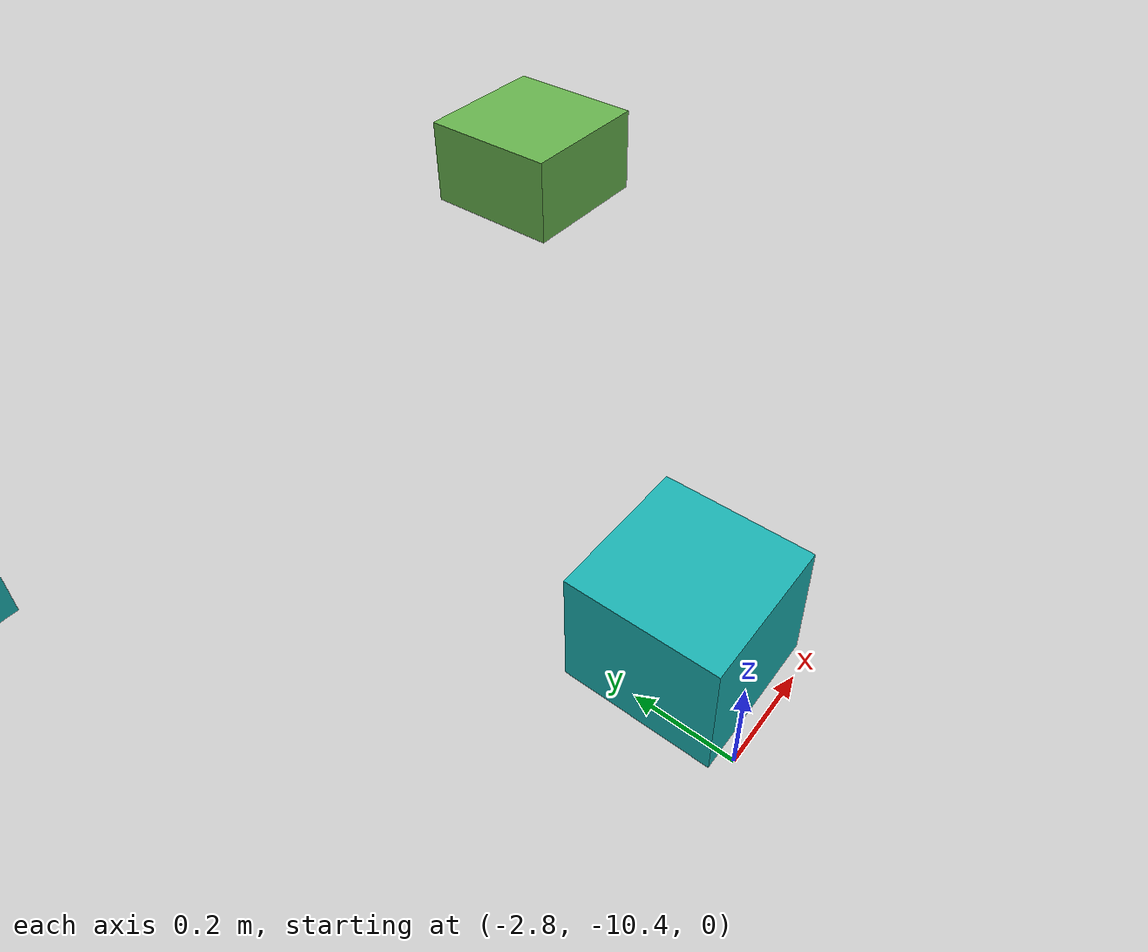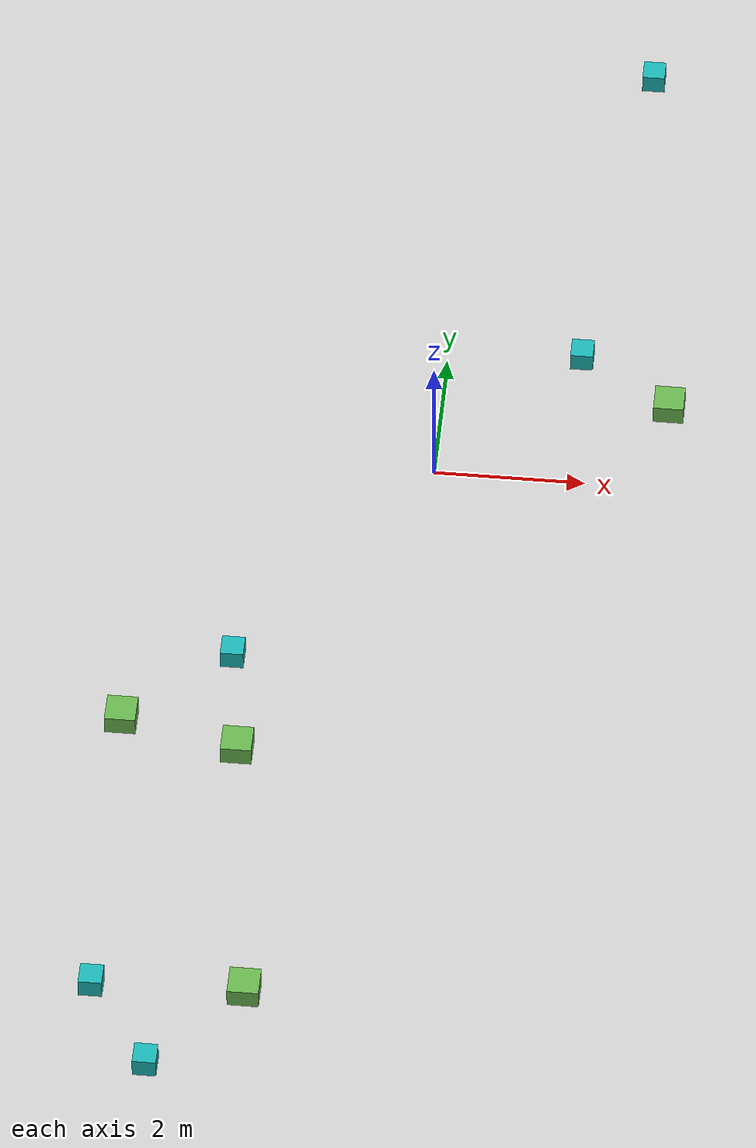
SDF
<sdf version="1.7">
 <world name="default">
  <scene><ambient>0.4 0.4 0.4 1</ambient><background>0.7 0.7 0.7 1</background><shadows>1</shadows></scene>
  <light name="sun" type="directional">
   <pose>0 0 10 0 -0 0</pose>
   <diffuse>0.8 0.8 0.8 1</diffuse>
   <specular>0.2 0.2 0.2 1</specular>
   <attenuation>
    <range>1000</range>
    <constant>0.9</constant>
    <linear>0.01</linear>
    <quadratic>0.001</quadratic>
   </attenuation>
   <direction>-0.5 0.1 -0.9</direction>
   <spot><inner_angle>0</inner_angle><outer_angle>0</outer_angle><falloff>0</falloff></spot>
  </light>
  <model name="ground_plane">
   <static>1</static>
   <link name="link">
    <collision name="collision">
     <geometry><plane><normal>0 0 1</normal><size>100 100</size></plane></geometry>
     <surface><friction><ode><mu>100</mu><mu2>50</mu2></ode></friction></surface>
    </collision>
    <visual name="visual">
     <cast_shadows>0</cast_shadows>
     <geometry><plane><normal>0 0 1</normal><size>100 100</size></plane></geometry>
     <material>
      <script><uri>file://media/materials/scripts/gazebo.material</uri><name>Gazebo/Grey</name></script>
     </material>
    </visual>
   </link>
  </model>
  <physics name="default_physics" default="0" type="ode">
   <real_time_update_rate>5e+06</real_time_update_rate>
   <max_step_size>0.05</max_step_size>
   <real_time_factor>0</real_time_factor>
   <ode>
    <solver>
     <type>quick</type>
     <iters>150</iters>
     <precon_iters>0</precon_iters>
     <sor>1.4</sor>
     <use_dynamic_moi_rescaling>1</use_dynamic_moi_rescaling>
    </solver>
    <constraints>
     <cfm>1e-05</cfm>
     <erp>0.2</erp>
     <contact_max_correcting_vel>2000</contact_max_correcting_vel>
     <contact_surface_layer>0.01</contact_surface_layer>
    </constraints>
   </ode>
  </physics>
  <gravity>0 0 -9.8</gravity>
  <magnetic_field>6e-06 2.3e-05 -4.2e-05</magnetic_field>
  <atmosphere type="adiabatic"/>
  <spherical_coordinates>
   <surface_model>EARTH_WGS84</surface_model>
   <latitude_deg>0</latitude_deg>
   <longitude_deg>0</longitude_deg>
   <elevation>0</elevation>
   <heading_deg>0</heading_deg>
  </spherical_coordinates>
  <audio><device>default</device></audio>
  <model name="wooden_wall_2_0">
   <link name="link_1">
    <inertial>
     <mass>1</mass>
     <inertia>
      <ixx>0.166667</ixx>
      <ixy>0</ixy>
      <ixz>0</ixz>
      <iyy>0.166667</iyy>
      <iyz>0</iyz>
      <izz>0.166667</izz>
     </inertia>
    </inertial>
    <visual name="visual">
     <geometry><box><size>2 0.1 1</size></box></geometry>
     <material>
      <lighting>1</lighting>
      <script><uri>file://media/materials/scripts/gazebo.material</uri><name>Gazebo/Grey</name></script>
      <shader type="pixel"><normal_map>__default__</normal_map></shader>
      <ambient>0.9 0.9 0.2 1</ambient>
      <diffuse>0.7 0.7 0.7 1</diffuse>
      <specular>0.01 0.01 0.01 1</specular>
      <emissive>0 0 0 1</emissive>
     </material>
    </visual>
    <collision name="collision">
     <geometry><box><size>2 0.1 1</size></box></geometry>
     <surface>
      <friction>
       <ode><mu>1</mu><mu2>1</mu2><fdir1>0 0 0</fdir1><slip1>0</slip1><slip2>0</slip2></ode>
       <torsional>
        <coefficient>1</coefficient>
        <patch_radius>0</patch_radius>
        <surface_radius>0</surface_radius>
        <use_patch_radius>1</use_patch_radius>
        <ode><slip>0</slip></ode>
       </torsional>
      </friction>
      <bounce><restitution_coefficient>0</restitution_coefficient><threshold>1e+06</threshold></bounce>
      <contact>
       <collide_without_contact>0</collide_without_contact>
       <collide_without_contact_bitmask>1</collide_without_contact_bitmask>
       <collide_bitmask>1</collide_bitmask>
       <ode>
        <soft_cfm>0</soft_cfm>
        <soft_erp>0.2</soft_erp>
        <kp>1e+13</kp>
        <kd>1</kd>
        <max_vel>0.01</max_vel>
        <min_depth>0</min_depth>
       </ode>
       <bullet>
        <split_impulse>1</split_impulse>
        <split_impulse_penetration_threshold>-0.01</split_impulse_penetration_threshold>
        <soft_cfm>0</soft_cfm>
        <soft_erp>0.2</soft_erp>
        <kp>1e+13</kp>
        <kd>1</kd>
       </bullet>
      </contact>
     </surface>
    </collision>
   </link>
   <static>0</static>
   <pose>-1233.63 16.7795 0.44953 0.001371 -0.052738 -0.026898</pose>
  </model>
  <model name="unit_box_0.3_heavy">
   <link name="link">
    <inertial>
     <mass>100</mass>
     <inertia><ixx>1.5</ixx><ixy>0</ixy><ixz>0</ixz><iyy>1.5</iyy><iyz>0</iyz><izz>1.5</izz></inertia>
    </inertial>
    <visual name="visual">
     <geometry><box><size>0.3 0.3 0.5</size></box></geometry>
     <material>
      <script><name>Gazebo/Grey</name><uri>file://media/materials/scripts/gazebo.material</uri></script>
      <shader type="pixel"><normal_map>__default__</normal_map></shader>
      <ambient>0.1 0.7 0.7 1</ambient>
      <diffuse>0.7 0.7 0.7 1</diffuse>
      <specular>0.01 0.01 0.01 1</specular>
      <emissive>0 0 0 1</emissive>
     </material>
    </visual>
    <collision name="collision">
     <geometry><box><size>0.3 0.3 0.5</size></box></geometry>
     <surface>
      <friction>
       <ode><mu>1</mu><mu2>1</mu2><fdir1>0 0 0</fdir1><slip1>0</slip1><slip2>0</slip2></ode>
       <torsional>
        <coefficient>1</coefficient>
        <patch_radius>0</patch_radius>
        <surface_radius>0</surface_radius>
        <use_patch_radius>1</use_patch_radius>
        <ode><slip>0</slip></ode>
       </torsional>
      </friction>
      <bounce><restitution_coefficient>0</restitution_coefficient><threshold>1e+06</threshold></bounce>
      <contact>
       <collide_without_contact>0</collide_without_contact>
       <collide_without_contact_bitmask>1</collide_without_contact_bitmask>
       <collide_bitmask>1</collide_bitmask>
       <ode>
        <soft_cfm>0</soft_cfm>
        <soft_erp>0.2</soft_erp>
        <kp>1e+13</kp>
        <kd>1</kd>
        <max_vel>0.01</max_vel>
        <min_depth>0</min_depth>
       </ode>
       <bullet>
        <split_impulse>1</split_impulse>
        <split_impulse_penetration_threshold>-0.01</split_impulse_penetration_threshold>
        <soft_cfm>0</soft_cfm>
        <soft_erp>0.2</soft_erp>
        <kp>1e+13</kp>
        <kd>1</kd>
       </bullet>
      </contact>
     </surface>
    </collision>
   </link>
   <static>1</static>
   <pose>2.34258 7.39749 0 0 -0 0</pose>
  </model>
  <model name="unit_box_0.3_heavy_clone">
   <link name="link">
    <inertial>
     <mass>100</mass>
     <inertia><ixx>1.5</ixx><ixy>0</ixy><ixz>0</ixz><iyy>1.5</iyy><iyz>0</iyz><izz>1.5</izz></inertia>
    </inertial>
    <visual name="visual">
     <geometry><box><size>0.3 0.3 0.5</size></box></geometry>
     <material>
      <script><name>Gazebo/Grey</name><uri>file://media/materials/scripts/gazebo.material</uri></script>
      <shader type="pixel"><normal_map>__default__</normal_map></shader>
      <ambient>0.1 0.7 0.7 1</ambient>
      <diffuse>0.7 0.7 0.7 1</diffuse>
      <specular>0.01 0.01 0.01 1</specular>
      <emissive>0 0 0 1</emissive>
     </material>
    </visual>
    <collision name="collision">
     <geometry><box><size>0.3 0.3 0.5</size></box></geometry>
     <surface>
      <friction>
       <ode><mu>1</mu><mu2>1</mu2><fdir1>0 0 0</fdir1><slip1>0</slip1><slip2>0</slip2></ode>
       <torsional>
        <coefficient>1</coefficient>
        <patch_radius>0</patch_radius>
        <surface_radius>0</surface_radius>
        <use_patch_radius>1</use_patch_radius>
        <ode><slip>0</slip></ode>
       </torsional>
      </friction>
      <bounce><restitution_coefficient>0</restitution_coefficient><threshold>1e+06</threshold></bounce>
      <contact>
       <collide_without_contact>0</collide_without_contact>
       <collide_without_contact_bitmask>1</collide_without_contact_bitmask>
       <collide_bitmask>1</collide_bitmask>
       <ode>
        <soft_cfm>0</soft_cfm>
        <soft_erp>0.2</soft_erp>
        <kp>1e+13</kp>
        <kd>1</kd>
        <max_vel>0.01</max_vel>
        <min_depth>0</min_depth>
       </ode>
       <bullet>
        <split_impulse>1</split_impulse>
        <split_impulse_penetration_threshold>-0.01</split_impulse_penetration_threshold>
        <soft_cfm>0</soft_cfm>
        <soft_erp>0.2</soft_erp>
        <kp>1e+13</kp>
        <kd>1</kd>
       </bullet>
      </contact>
     </surface>
    </collision>
   </link>
   <static>1</static>
   <pose>1.78659 2.18785 0 0 -0 0</pose>
  </model>
  <model name="unit_box_0.3_heavy_clone_clone_3_clone">
   <link name="link">
    <inertial>
     <mass>100</mass>
     <inertia><ixx>1.5</ixx><ixy>0</ixy><ixz>0</ixz><iyy>1.5</iyy><iyz>0</iyz><izz>1.5</izz></inertia>
    </inertial>
    <visual name="visual">
     <geometry><box><size>0.3 0.3 0.5</size></box></geometry>
     <material>
      <script><name>Gazebo/Grey</name><uri>file://media/materials/scripts/gazebo.material</uri></script>
      <shader type="pixel"><normal_map>__default__</normal_map></shader>
      <ambient>0.1 0.7 0.7 1</ambient>
      <diffuse>0.7 0.7 0.7 1</diffuse>
      <specular>0.01 0.01 0.01 1</specular>
      <emissive>0 0 0 1</emissive>
     </material>
    </visual>
    <collision name="collision">
     <geometry><box><size>0.3 0.3 0.5</size></box></geometry>
     <surface>
      <friction>
       <ode><mu>1</mu><mu2>1</mu2><fdir1>0 0 0</fdir1><slip1>0</slip1><slip2>0</slip2></ode>
       <torsional>
        <coefficient>1</coefficient>
        <patch_radius>0</patch_radius>
        <surface_radius>0</surface_radius>
        <use_patch_radius>1</use_patch_radius>
        <ode><slip>0</slip></ode>
       </torsional>
      </friction>
      <bounce><restitution_coefficient>0</restitution_coefficient><threshold>1e+06</threshold></bounce>
      <contact>
       <collide_without_contact>0</collide_without_contact>
       <collide_without_contact_bitmask>1</collide_without_contact_bitmask>
       <collide_bitmask>1</collide_bitmask>
       <ode>
        <soft_cfm>0</soft_cfm>
        <soft_erp>0.2</soft_erp>
        <kp>1e+13</kp>
        <kd>1</kd>
        <max_vel>0.01</max_vel>
        <min_depth>0</min_depth>
       </ode>
       <bullet>
        <split_impulse>1</split_impulse>
        <split_impulse_penetration_threshold>-0.01</split_impulse_penetration_threshold>
        <soft_cfm>0</soft_cfm>
        <soft_erp>0.2</soft_erp>
        <kp>1e+13</kp>
        <kd>1</kd>
       </bullet>
      </contact>
     </surface>
    </collision>
   </link>
   <static>1</static>
   <pose>-2.30217 -3.43735 0 0 -0 0</pose>
  </model>
  <model name="unit_box_0.4_heavy_clone_3">
   <link name="link">
    <inertial>
     <mass>100</mass>
     <inertia><ixx>1.5</ixx><ixy>0</ixy><ixz>0</ixz><iyy>1.5</iyy><iyz>0</iyz><izz>1.5</izz></inertia>
    </inertial>
    <visual name="visual">
     <geometry><box><size>0.4 0.4 0.5</size></box></geometry>
     <material>
      <script><name>Gazebo/Grey</name><uri>file://media/materials/scripts/gazebo.material</uri></script>
      <shader type="pixel"><normal_map>__default__</normal_map></shader>
      <ambient>0.4 0.7 0.3 1</ambient>
      <diffuse>0.7 0.7 0.7 1</diffuse>
      <specular>0.01 0.01 0.01 1</specular>
      <emissive>0 0 0 1</emissive>
     </material>
    </visual>
    <collision name="collision">
     <geometry><box><size>0.4 0.4 0.5</size></box></geometry>
     <surface>
      <friction>
       <ode><mu>1</mu><mu2>1</mu2><fdir1>0 0 0</fdir1><slip1>0</slip1><slip2>0</slip2></ode>
       <torsional>
        <coefficient>1</coefficient>
        <patch_radius>0</patch_radius>
        <surface_radius>0</surface_radius>
        <use_patch_radius>1</use_patch_radius>
        <ode><slip>0</slip></ode>
       </torsional>
      </friction>
      <bounce><restitution_coefficient>0</restitution_coefficient><threshold>1e+06</threshold></bounce>
      <contact>
       <collide_without_contact>0</collide_without_contact>
       <collide_without_contact_bitmask>1</collide_without_contact_bitmask>
       <collide_bitmask>1</collide_bitmask>
       <ode>
        <soft_cfm>0</soft_cfm>
        <soft_erp>0.2</soft_erp>
        <kp>1e+13</kp>
        <kd>1</kd>
        <max_vel>0.01</max_vel>
        <min_depth>0</min_depth>
       </ode>
       <bullet>
        <split_impulse>1</split_impulse>
        <split_impulse_penetration_threshold>-0.01</split_impulse_penetration_threshold>
        <soft_cfm>0</soft_cfm>
        <soft_erp>0.2</soft_erp>
        <kp>1e+13</kp>
        <kd>1</kd>
       </bullet>
      </contact>
     </surface>
    </collision>
   </link>
   <static>1</static>
   <pose>-2.0806 -4.99565 0 0 -0 0</pose>
  </model>
  <model name="unit_box_0.4_heavy_clone_4">
   <link name="link">
    <inertial>
     <mass>100</mass>
     <inertia><ixx>1.5</ixx><ixy>0</ixy><ixz>0</ixz><iyy>1.5</iyy><iyz>0</iyz><izz>1.5</izz></inertia>
    </inertial>
    <visual name="visual">
     <geometry><box><size>0.4 0.4 0.5</size></box></geometry>
     <material>
      <script><name>Gazebo/Grey</name><uri>file://media/materials/scripts/gazebo.material</uri></script>
      <shader type="pixel"><normal_map>__default__</normal_map></shader>
      <ambient>0.4 0.7 0.3 1</ambient>
      <diffuse>0.7 0.7 0.7 1</diffuse>
      <specular>0.01 0.01 0.01 1</specular>
      <emissive>0 0 0 1</emissive>
     </material>
    </visual>
    <collision name="collision">
     <geometry><box><size>0.4 0.4 0.5</size></box></geometry>
     <surface>
      <friction>
       <ode><mu>1</mu><mu2>1</mu2><fdir1>0 0 0</fdir1><slip1>0</slip1><slip2>0</slip2></ode>
       <torsional>
        <coefficient>1</coefficient>
        <patch_radius>0</patch_radius>
        <surface_radius>0</surface_radius>
        <use_patch_radius>1</use_patch_radius>
        <ode><slip>0</slip></ode>
       </torsional>
      </friction>
      <bounce><restitution_coefficient>0</restitution_coefficient><threshold>1e+06</threshold></bounce>
      <contact>
       <collide_without_contact>0</collide_without_contact>
       <collide_without_contact_bitmask>1</collide_without_contact_bitmask>
       <collide_bitmask>1</collide_bitmask>
       <ode>
        <soft_cfm>0</soft_cfm>
        <soft_erp>0.2</soft_erp>
        <kp>1e+13</kp>
        <kd>1</kd>
        <max_vel>0.01</max_vel>
        <min_depth>0</min_depth>
       </ode>
       <bullet>
        <split_impulse>1</split_impulse>
        <split_impulse_penetration_threshold>-0.01</split_impulse_penetration_threshold>
        <soft_cfm>0</soft_cfm>
        <soft_erp>0.2</soft_erp>
        <kp>1e+13</kp>
        <kd>1</kd>
       </bullet>
      </contact>
     </surface>
    </collision>
   </link>
   <static>1</static>
   <pose>-3.62174 -4.63055 0 0 -0 0</pose>
  </model>
  <model name="unit_box_0.4_heavy_clone_5">
   <link name="link">
    <inertial>
     <mass>100</mass>
     <inertia><ixx>1.5</ixx><ixy>0</ixy><ixz>0</ixz><iyy>1.5</iyy><iyz>0</iyz><izz>1.5</izz></inertia>
    </inertial>
    <visual name="visual">
     <geometry><box><size>0.4 0.4 0.5</size></box></geometry>
     <material>
      <script><name>Gazebo/Grey</name><uri>file://media/materials/scripts/gazebo.material</uri></script>
      <shader type="pixel"><normal_map>__default__</normal_map></shader>
      <ambient>0.4 0.7 0.3 1</ambient>
      <diffuse>0.7 0.7 0.7 1</diffuse>
      <specular>0.01 0.01 0.01 1</specular>
      <emissive>0 0 0 1</emissive>
     </material>
    </visual>
    <collision name="collision">
     <geometry><box><size>0.4 0.4 0.5</size></box></geometry>
     <surface>
      <friction>
       <ode><mu>1</mu><mu2>1</mu2><fdir1>0 0 0</fdir1><slip1>0</slip1><slip2>0</slip2></ode>
       <torsional>
        <coefficient>1</coefficient>
        <patch_radius>0</patch_radius>
        <surface_radius>0</surface_radius>
        <use_patch_radius>1</use_patch_radius>
        <ode><slip>0</slip></ode>
       </torsional>
      </friction>
      <bounce><restitution_coefficient>0</restitution_coefficient><threshold>1e+06</threshold></bounce>
      <contact>
       <collide_without_contact>0</collide_without_contact>
       <collide_without_contact_bitmask>1</collide_without_contact_bitmask>
       <collide_bitmask>1</collide_bitmask>
       <ode>
        <soft_cfm>0</soft_cfm>
        <soft_erp>0.2</soft_erp>
        <kp>1e+13</kp>
        <kd>1</kd>
        <max_vel>0.01</max_vel>
        <min_depth>0</min_depth>
       </ode>
       <bullet>
        <split_impulse>1</split_impulse>
        <split_impulse_penetration_threshold>-0.01</split_impulse_penetration_threshold>
        <soft_cfm>0</soft_cfm>
        <soft_erp>0.2</soft_erp>
        <kp>1e+13</kp>
        <kd>1</kd>
       </bullet>
      </contact>
     </surface>
    </collision>
   </link>
   <static>1</static>
   <pose>-1.57176 -8.95053 0 0 -0 0</pose>
  </model>
  <model name="unit_box_0.3_heavy_clone_clone_3_clone_clone_1">
   <link name="link">
    <inertial>
     <mass>100</mass>
     <inertia><ixx>1.5</ixx><ixy>0</ixy><ixz>0</ixz><iyy>1.5</iyy><iyz>0</iyz><izz>1.5</izz></inertia>
    </inertial>
    <visual name="visual">
     <geometry><box><size>0.3 0.3 0.5</size></box></geometry>
     <material>
      <script><name>Gazebo/Grey</name><uri>file://media/materials/scripts/gazebo.material</uri></script>
      <shader type="pixel"><normal_map>__default__</normal_map></shader>
      <ambient>0.1 0.7 0.7 1</ambient>
      <diffuse>0.7 0.7 0.7 1</diffuse>
      <specular>0.01 0.01 0.01 1</specular>
      <emissive>0 0 0 1</emissive>
     </material>
    </visual>
    <collision name="collision">
     <geometry><box><size>0.3 0.3 0.5</size></box></geometry>
     <surface>
      <friction>
       <ode><mu>1</mu><mu2>1</mu2><fdir1>0 0 0</fdir1><slip1>0</slip1><slip2>0</slip2></ode>
       <torsional>
        <coefficient>1</coefficient>
        <patch_radius>0</patch_radius>
        <surface_radius>0</surface_radius>
        <use_patch_radius>1</use_patch_radius>
        <ode><slip>0</slip></ode>
       </torsional>
      </friction>
      <bounce><restitution_coefficient>0</restitution_coefficient><threshold>1e+06</threshold></bounce>
      <contact>
       <collide_without_contact>0</collide_without_contact>
       <collide_without_contact_bitmask>1</collide_without_contact_bitmask>
       <collide_bitmask>1</collide_bitmask>
       <ode>
        <soft_cfm>0</soft_cfm>
        <soft_erp>0.2</soft_erp>
        <kp>1e+13</kp>
        <kd>1</kd>
        <max_vel>0.01</max_vel>
        <min_depth>0</min_depth>
       </ode>
       <bullet>
        <split_impulse>1</split_impulse>
        <split_impulse_penetration_threshold>-0.01</split_impulse_penetration_threshold>
        <soft_cfm>0</soft_cfm>
        <soft_erp>0.2</soft_erp>
        <kp>1e+13</kp>
        <kd>1</kd>
       </bullet>
      </contact>
     </surface>
    </collision>
   </link>
   <static>1</static>
   <pose>-3.50567 -9.02065 0 0 -0 0</pose>
  </model>
  <model name="unit_box_0.3_heavy_clone_clone_3_clone_clone_2">
   <link name="link">
    <inertial>
     <mass>100</mass>
     <inertia><ixx>1.5</ixx><ixy>0</ixy><ixz>0</ixz><iyy>1.5</iyy><iyz>0</iyz><izz>1.5</izz></inertia>
    </inertial>
    <visual name="visual">
     <geometry><box><size>0.3 0.3 0.5</size></box></geometry>
     <material>
      <script><name>Gazebo/Grey</name><uri>file://media/materials/scripts/gazebo.material</uri></script>
      <shader type="pixel"><normal_map>__default__</normal_map></shader>
      <ambient>0.1 0.7 0.7 1</ambient>
      <diffuse>0.7 0.7 0.7 1</diffuse>
      <specular>0.01 0.01 0.01 1</specular>
      <emissive>0 0 0 1</emissive>
     </material>
    </visual>
    <collision name="collision">
     <geometry><box><size>0.3 0.3 0.5</size></box></geometry>
     <surface>
      <friction>
       <ode><mu>1</mu><mu2>1</mu2><fdir1>0 0 0</fdir1><slip1>0</slip1><slip2>0</slip2></ode>
       <torsional>
        <coefficient>1</coefficient>
        <patch_radius>0</patch_radius>
        <surface_radius>0</surface_radius>
        <use_patch_radius>1</use_patch_radius>
        <ode><slip>0</slip></ode>
       </torsional>
      </friction>
      <bounce><restitution_coefficient>0</restitution_coefficient><threshold>1e+06</threshold></bounce>
      <contact>
       <collide_without_contact>0</collide_without_contact>
       <collide_without_contact_bitmask>1</collide_without_contact_bitmask>
       <collide_bitmask>1</collide_bitmask>
       <ode>
        <soft_cfm>0</soft_cfm>
        <soft_erp>0.2</soft_erp>
        <kp>1e+13</kp>
        <kd>1</kd>
        <max_vel>0.01</max_vel>
        <min_depth>0</min_depth>
       </ode>
       <bullet>
        <split_impulse>1</split_impulse>
        <split_impulse_penetration_threshold>-0.01</split_impulse_penetration_threshold>
        <soft_cfm>0</soft_cfm>
        <soft_erp>0.2</soft_erp>
        <kp>1e+13</kp>
        <kd>1</kd>
       </bullet>
      </contact>
     </surface>
    </collision>
   </link>
   <static>1</static>
   <pose>-2.68457 -10.2223 0 0 -0 0</pose>
  </model>
  <model name="unit_box_0.4_heavy_clone_4_clone">
   <link name="link">
    <inertial>
     <mass>100</mass>
     <inertia><ixx>1.5</ixx><ixy>0</ixy><ixz>0</ixz><iyy>1.5</iyy><iyz>0</iyz><izz>1.5</izz></inertia>
    </inertial>
    <visual name="visual">
     <geometry><box><size>0.4 0.4 0.5</size></box></geometry>
     <material>
      <script><name>Gazebo/Grey</name><uri>file://media/materials/scripts/gazebo.material</uri></script>
      <shader type="pixel"><normal_map>__default__</normal_map></shader>
      <ambient>0.4 0.7 0.3 1</ambient>
      <diffuse>0.7 0.7 0.7 1</diffuse>
      <specular>0.01 0.01 0.01 1</specular>
      <emissive>0 0 0 1</emissive>
     </material>
    </visual>
    <collision name="collision">
     <geometry><box><size>0.4 0.4 0.5</size></box></geometry>
     <surface>
      <friction>
       <ode><mu>1</mu><mu2>1</mu2><fdir1>0 0 0</fdir1><slip1>0</slip1><slip2>0</slip2></ode>
       <torsional>
        <coefficient>1</coefficient>
        <patch_radius>0</patch_radius>
        <surface_radius>0</surface_radius>
        <use_patch_radius>1</use_patch_radius>
        <ode><slip>0</slip></ode>
       </torsional>
      </friction>
      <bounce><restitution_coefficient>0</restitution_coefficient><threshold>1e+06</threshold></bounce>
      <contact>
       <collide_without_contact>0</collide_without_contact>
       <collide_without_contact_bitmask>1</collide_without_contact_bitmask>
       <collide_bitmask>1</collide_bitmask>
       <ode>
        <soft_cfm>0</soft_cfm>
        <soft_erp>0.2</soft_erp>
        <kp>1e+13</kp>
        <kd>1</kd>
        <max_vel>0.01</max_vel>
        <min_depth>0</min_depth>
       </ode>
       <bullet>
        <split_impulse>1</split_impulse>
        <split_impulse_penetration_threshold>-0.01</split_impulse_penetration_threshold>
        <soft_cfm>0</soft_cfm>
        <soft_erp>0.2</soft_erp>
        <kp>1e+13</kp>
        <kd>1</kd>
       </bullet>
      </contact>
     </surface>
    </collision>
   </link>
   <static>1</static>
   <pose>3.00836 1.40276 0 0 -0 0</pose>
  </model>
 </world>
</sdf>
